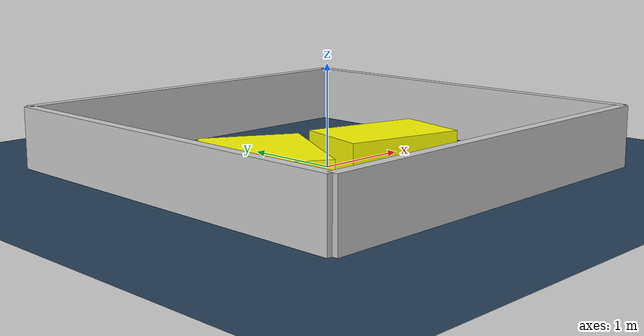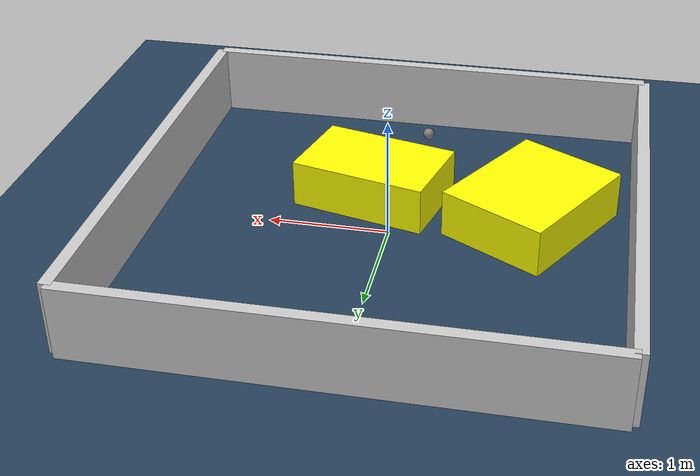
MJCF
<?xml version="1.0" ?>
<mujoco model="generated_environment">
  <option timestep="0.01" integrator="RK4" cone="elliptic"/>
  <default>
    <geom density="1"/>
  </default>
  <asset>
    <texture builtin="gradient" height="3072" rgb1="0.3 0.5 0.7" rgb2="0 0 0" type="skybox" width="512"/>
    <texture builtin="checker" height="300" mark="edge" markrgb="0.8 0.8 0.8" name="groundplane" rgb1="0.2 0.3 0.4" rgb2="0.1 0.2 0.3" type="2d" width="300"/>
    <material name="groundplane" reflectance="0.2" texrepeat="5 5" texture="groundplane" texuniform="true"/>
    <material name="robot" rgba="0.0 1.0 0.0 1"/>
  </asset>
  <worldbody>
    <light dir="0 0 -1" directional="true" pos="0 0 1.5"/>
    <geom condim="4" friction="1.0 0.005 0.001" material="groundplane" name="floor" size="0 0 0.05" type="plane"/>
    <body name="walls">
      <geom name="wall_1" condim="4" pos="-2.0 0.0 0.3" rgba="0.800000011920929 0.800000011920929 0.800000011920929 1.0" size="0.05 2.0 0.3" type="box"/>
      <geom name="wall_2" condim="4" pos="2.0 0.0 0.3" rgba="0.800000011920929 0.800000011920929 0.800000011920929 1.0" size="0.05 2.0 0.3" type="box"/>
      <geom name="wall_3" condim="4" pos="0.0 -2.0 0.3" rgba="0.800000011920929 0.800000011920929 0.800000011920929 1.0" size="2.0 0.05 0.3" type="box"/>
      <geom name="wall_4" condim="4" pos="0.0 2.0 0.3" rgba="0.800000011920929 0.800000011920929 0.800000011920929 1.0" size="2.0 0.05 0.3" type="box"/>
    </body>
    <body name="robot">
      <joint name="joint_x" type="slide" pos="0 0 0" axis="1 0 0"/>
      <joint name="joint_y" type="slide" pos="0 0 0" axis="0 1 0"/>
      <geom name="robot" type="sphere" pos="-0.1143122184320775 -1.3984535631263042 0.2" size="0.05" mass="5." friction="1.0 0.005 0.0001" condim="4"/>
      <site name="sensor_ball"/>
    </body>
    <body name="obstacle_1_movable">
      <geom name="obstacle_1_movable" condim="4" pos="-1.1387908124093176 -0.3382065036817752 0.2" euler="0 0 240.3841301975876" friction="1.0 0.005 0.001" rgba="1 1 0 1" size="0.591097383041962 0.4728441385726208 0.2" type="box" mass="0.1"/>
      <joint type="free"/>
    </body>
    <body name="obstacle_2_movable">
      <geom name="obstacle_2_movable" condim="4" pos="0.21500820106002871 -0.5218047143459037 0.2" euler="0 0 346.365792720878" friction="1.0 0.005 0.001" rgba="1 1 0 1" size="0.5831285113169091 0.3735083535726321 0.2" type="box" mass="0.1"/>
      <joint type="free"/>
    </body>
  </worldbody>
  <actuator>
    <motor name="actuator_x" joint="joint_x" gear="1" ctrlrange="-1 1"/>
    <motor name="actuator_y" joint="joint_y" gear="1" ctrlrange="-1 1"/>
  </actuator>
</mujoco>
